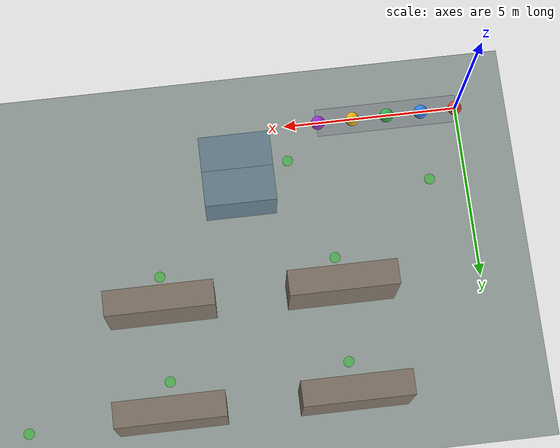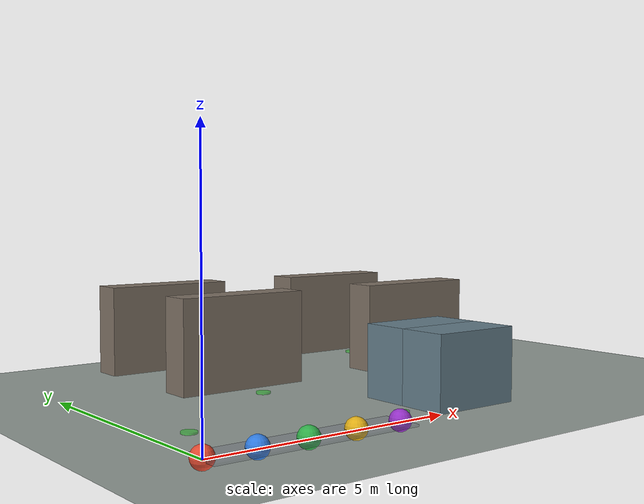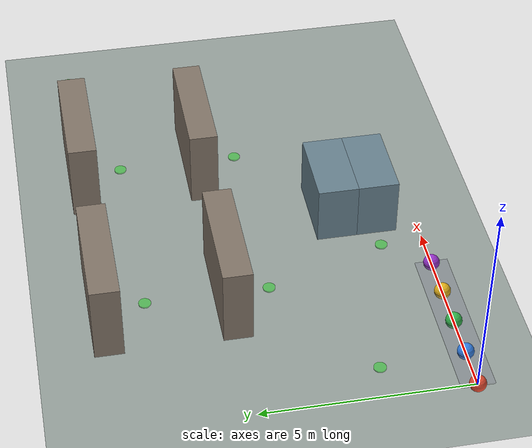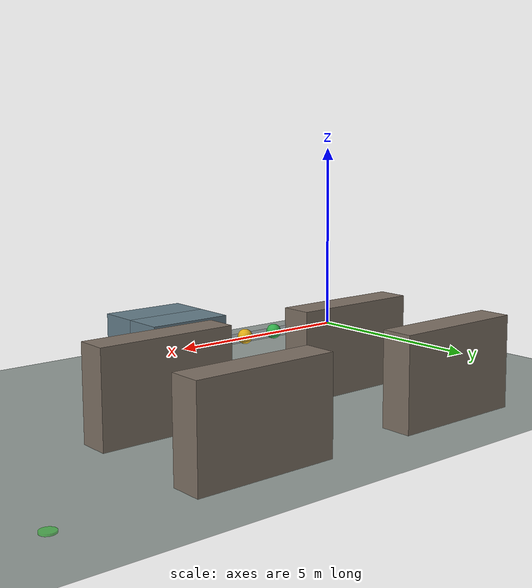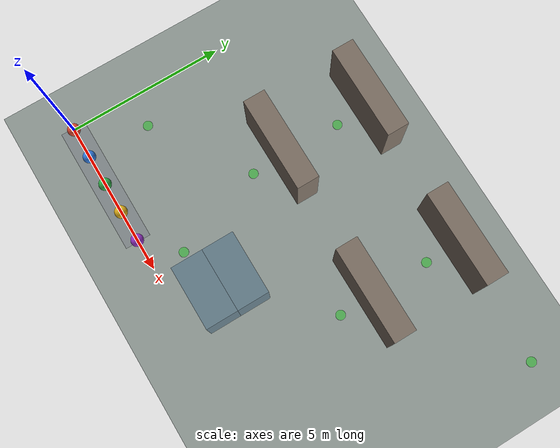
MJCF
<mujoco model="agv_qos_scene">
  <!-- 纯 AGV 场景: 与 QoS 地图 map_20260730_162111.json 对齐。
       只含地面 / 货架 / 地标 / AGV mocap 球 —— 不含机器人, 便于先验证调度。 -->
  <statistic center="7.5 5.0 0.6" extent="12" meansize="0.1"/>

  <visual>
    <headlight diffuse="0.6 0.6 0.6" ambient="0.1 0.1 0.1" specular="0 0 0"/>
    <global azimuth="180" elevation="-35"/>
  </visual>

  <asset>
    <texture name="floor_tex" type="2d" builtin="flat" rgb1=".58 .62 .60" rgb2=".50 .54 .52" width="128" height="128" mark="random" markrgb=".52 .56 .54"/>
    <material name="floor_mat" texture="floor_tex" texrepeat="20 15" texuniform="true" reflectance="0.03"/>
    <material name="shelf_mat" rgba="0.5 0.45 0.4 1"/>
    <material name="equip_mat" rgba="0.4 0.5 0.55 1"/>
    <material name="agv0_mat" rgba="0.9 0.3 0.2 1"/>
    <material name="agv1_mat" rgba="0.2 0.5 0.9 1"/>
    <material name="agv2_mat" rgba="0.2 0.7 0.3 1"/>
    <material name="agv3_mat" rgba="0.9 0.7 0.1 1"/>
    <material name="agv4_mat" rgba="0.6 0.2 0.8 1"/>
    <material name="agv5_mat" rgba="0.2 0.8 0.8 1"/>
    <material name="agv6_mat" rgba="0.9 0.5 0.6 1"/>
    <material name="agv7_mat" rgba="0.5 0.5 0.5 1"/>
    <material name="lm_mat" rgba="0.2 0.8 0.2 0.6"/>
    <material name="garage_mat" rgba="0.4 0.4 0.5 0.25"/>
    <material name="dyn_mat" rgba="0.95 0.15 0.2 0.6"/>
  </asset>

  <worldbody>
    <light pos="7.5 5.0 6" directional="true"/>
    <geom name="ground" type="plane" pos="0 0 -0.16" size="30 30 0.1" material="floor_mat" friction="1.0 0.1 0.1"/>

    <!-- 货架 / 设备 (与 factory 场景一致, 对齐 QoS 地图障碍格) -->
    <body name="obs_0" pos="9.0 8.0 0.84">
      <geom name="obs_0_geom" type="box" size="1.5 0.35 1.00" material="shelf_mat" contype="1" conaffinity="1"/>
    </body>
    <body name="obs_1" pos="9.0 5.0 0.84">
      <geom name="obs_1_geom" type="box" size="1.5 0.35 1.00" material="shelf_mat" contype="1" conaffinity="1"/>
    </body>
    <body name="obs_2" pos="6.5 1.0 0.59">
      <geom name="obs_2_geom" type="box" size="1.0 0.5 0.75" material="equip_mat" contype="1" conaffinity="1"/>
    </body>
    <body name="obs_3" pos="4.0 5.0 0.84">
      <geom name="obs_3_geom" type="box" size="1.5 0.35 1.00" material="shelf_mat" contype="1" conaffinity="1"/>
    </body>
    <body name="obs_4" pos="4.0 8.0 0.84">
      <geom name="obs_4_geom" type="box" size="1.5 0.35 1.00" material="shelf_mat" contype="1" conaffinity="1"/>
    </body>
    <body name="obs_5" pos="6.5 2.0 0.59">
      <geom name="obs_5_geom" type="box" size="1.0 0.5 0.75" material="equip_mat" contype="1" conaffinity="1"/>
    </body>

    <!-- 地标标记 -->
    <body name="lm_LM000" pos="4.0 4.0 -0.12">
      <geom name="lm_LM000_geom" type="cylinder" size="0.15 0.02" material="lm_mat" contype="0" conaffinity="0"/>
    </body>
    <body name="lm_LM001" pos="9.0 4.0 -0.12">
      <geom name="lm_LM001_geom" type="cylinder" size="0.15 0.02" material="lm_mat" contype="0" conaffinity="0"/>
    </body>
    <body name="lm_LM002" pos="9.0 7.0 -0.12">
      <geom name="lm_LM002_geom" type="cylinder" size="0.15 0.02" material="lm_mat" contype="0" conaffinity="0"/>
    </body>
    <body name="lm_LM003" pos="4.0 7.0 -0.12">
      <geom name="lm_LM003_geom" type="cylinder" size="0.15 0.02" material="lm_mat" contype="0" conaffinity="0"/>
    </body>
    <body name="lm_LM004" pos="13.0 8.0 -0.12">
      <geom name="lm_LM004_geom" type="cylinder" size="0.15 0.02" material="lm_mat" contype="0" conaffinity="0"/>
    </body>
    <body name="lm_LM005" pos="1.0 2.0 -0.12">
      <geom name="lm_LM005_geom" type="cylinder" size="0.15 0.02" material="lm_mat" contype="0" conaffinity="0"/>
    </body>
    <body name="lm_LM006" pos="5.0 1.0 -0.12">
      <geom name="lm_LM006_geom" type="cylinder" size="0.15 0.02" material="lm_mat" contype="0" conaffinity="0"/>
    </body>

    。 -->
    <geom name="garage_pad" type="box" pos="2.0 0.0 0.02" size="2.05 0.4 0.02"
          material="garage_mat" contype="0" conaffinity="0"/>
    <body name="agv_g0" pos="0.0 0.0 0.04" mocap="true">
      <geom name="agv_g0_geom" type="sphere" size="0.2" material="agv0_mat" contype="1" conaffinity="1"/>
    </body>
    <body name="agv_g1" pos="1.0 0.0 0.04" mocap="true">
      <geom name="agv_g1_geom" type="sphere" size="0.2" material="agv1_mat" contype="1" conaffinity="1"/>
    </body>
    <body name="agv_g2" pos="2.0 0.0 0.04" mocap="true">
      <geom name="agv_g2_geom" type="sphere" size="0.2" material="agv2_mat" contype="1" conaffinity="1"/>
    </body>
    <body name="agv_g3" pos="3.0 0.0 0.04" mocap="true">
      <geom name="agv_g3_geom" type="sphere" size="0.2" material="agv3_mat" contype="1" conaffinity="1"/>
    </body>
    <body name="agv_g4" pos="4.0 0.0 0.04" mocap="true">
      <geom name="agv_g4_geom" type="sphere" size="0.2" material="agv4_mat" contype="1" conaffinity="1"/>
    </body>

    <!-- 超过车库容量 (5辆) 的新车球体: 由 agv_world_qos_mujoco.py 拼进此处 -->
    <!-- AGV_INSERT -->
  </worldbody>

  <option gravity="0 0 -9.81"/>
</mujoco>
